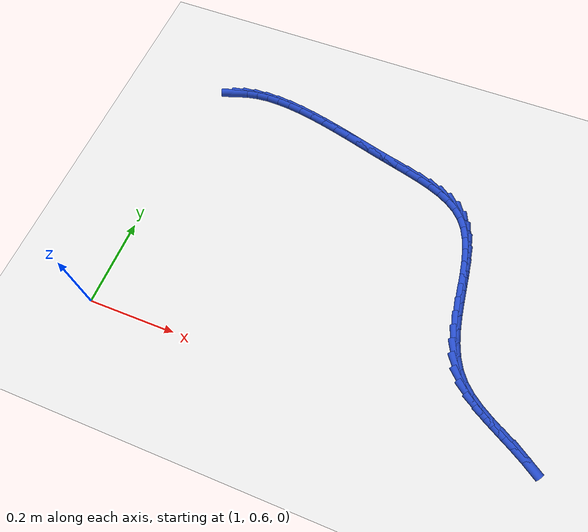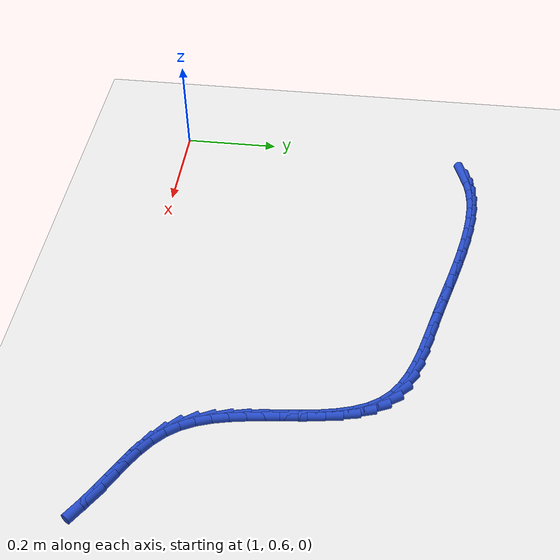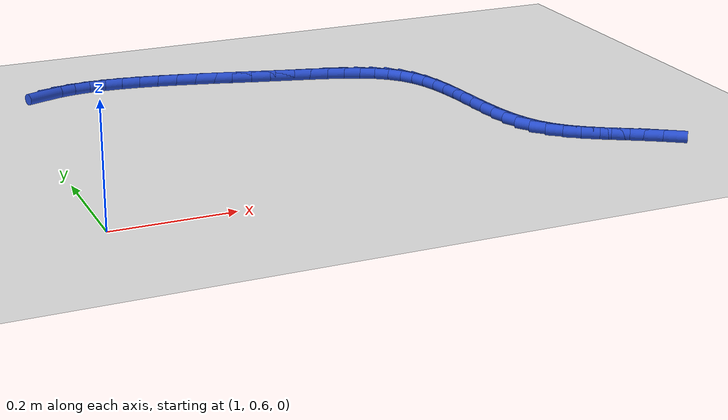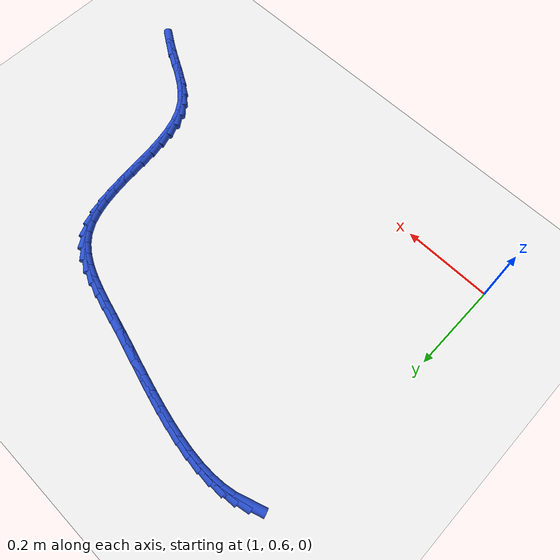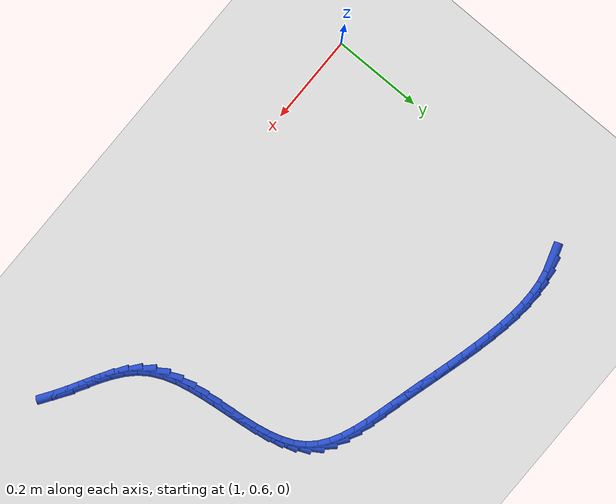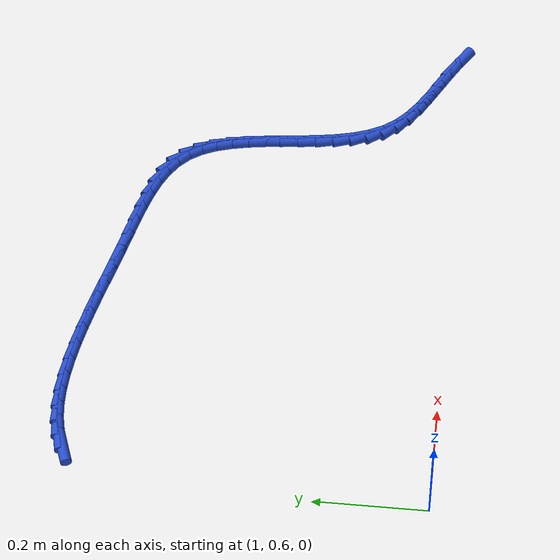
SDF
<sdf version="1.6">
 <world name="default">
  <model name="ground_plane">
   <static>1</static>
   <link name="link">
    <collision name="collision">
     <geometry><plane><normal>0 0 1</normal><size>100 100</size></plane></geometry>
     <surface><friction><ode><mu>100</mu><mu2>50</mu2></ode></friction></surface>
    </collision>
    <visual name="visual">
     <cast_shadows>0</cast_shadows>
     <geometry><plane><normal>0 0 1</normal><size>100 100</size></plane></geometry>
     <material>
      <script><uri>file://media/materials/scripts/gazebo.material</uri><name>Gazebo/WhiteGlow</name></script>
     </material>
    </visual>
   </link>
  </model>
  <model name="line">
   <link name="link_60">
    <pose>1.0682980972082632 1.2331336437885976 0.01 0 1.57 0.3257602040646511</pose>
    <collision name="collision">
     <geometry><cylinder><radius>0.01</radius><length>0.08</length></cylinder></geometry>
    </collision>
    <visual name="visual">
     <material>
      <script><name>Gazebo/Blue</name><uri>file://media/materials/scripts/gazebo.material</uri></script>
     </material>
     <geometry><cylinder><radius>0.01</radius><length>0.08</length></cylinder></geometry>
    </visual>
   </link>
   <link name="link_61">
    <pose>1.0928670368824889 1.241432896139681 0.01 0 1.57 0.19245607330047745</pose>
    <collision name="collision">
     <geometry><cylinder><radius>0.01</radius><length>0.08</length></cylinder></geometry>
    </collision>
    <visual name="visual">
     <material>
      <script><name>Gazebo/Blue</name><uri>file://media/materials/scripts/gazebo.material</uri></script>
     </material>
     <geometry><cylinder><radius>0.01</radius><length>0.08</length></cylinder></geometry>
    </visual>
   </link>
   <link name="link_62">
    <pose>1.119315324756412 1.2465868201007393 0.01 0 1.57 0.0819812979620027</pose>
    <collision name="collision">
     <geometry><cylinder><radius>0.01</radius><length>0.08</length></cylinder></geometry>
    </collision>
    <visual name="visual">
     <material>
      <script><name>Gazebo/Blue</name><uri>file://media/materials/scripts/gazebo.material</uri></script>
     </material>
     <geometry><cylinder><radius>0.01</radius><length>0.08</length></cylinder></geometry>
    </visual>
   </link>
   <link name="link_63">
    <pose>1.1474472630183485 1.2488982936551765 0.01 0 1.57 -0.007700715751210329</pose>
    <collision name="collision">
     <geometry><cylinder><radius>0.01</radius><length>0.08</length></cylinder></geometry>
    </collision>
    <visual name="visual">
     <material>
      <script><name>Gazebo/Blue</name><uri>file://media/materials/scripts/gazebo.material</uri></script>
     </material>
     <geometry><cylinder><radius>0.01</radius><length>0.08</length></cylinder></geometry>
    </visual>
   </link>
   <link name="link_64">
    <pose>1.1770671538566142 1.2486701947863992 0.01 0 1.57 -0.07956709545704521</pose>
    <collision name="collision">
     <geometry><cylinder><radius>0.01</radius><length>0.08</length></cylinder></geometry>
    </collision>
    <visual name="visual">
     <material>
      <script><name>Gazebo/Blue</name><uri>file://media/materials/scripts/gazebo.material</uri></script>
     </material>
     <geometry><cylinder><radius>0.01</radius><length>0.08</length></cylinder></geometry>
    </visual>
   </link>
   <link name="link_65">
    <pose>1.2079792994595255 1.2462054014778121 0.01 0 1.57 -0.13656384455430579</pose>
    <collision name="collision">
     <geometry><cylinder><radius>0.01</radius><length>0.08</length></cylinder></geometry>
    </collision>
    <visual name="visual">
     <material>
      <script><name>Gazebo/Blue</name><uri>file://media/materials/scripts/gazebo.material</uri></script>
     </material>
     <geometry><cylinder><radius>0.01</radius><length>0.08</length></cylinder></geometry>
    </visual>
   </link>
   <link name="link_66">
    <pose>1.2399880020153982 1.2418067917128204 0.01 0 1.57 -0.18120595964699635</pose>
    <collision name="collision">
     <geometry><cylinder><radius>0.01</radius><length>0.08</length></cylinder></geometry>
    </collision>
    <visual name="visual">
     <material>
      <script><name>Gazebo/Blue</name><uri>file://media/materials/scripts/gazebo.material</uri></script>
     </material>
     <geometry><cylinder><radius>0.01</radius><length>0.08</length></cylinder></geometry>
    </visual>
   </link>
   <link name="link_67">
    <pose>1.272897563712548 1.2357772434748293 0.01 0 1.57 -0.215482275003066</pose>
    <collision name="collision">
     <geometry><cylinder><radius>0.01</radius><length>0.08</length></cylinder></geometry>
    </collision>
    <visual name="visual">
     <material>
      <script><name>Gazebo/Blue</name><uri>file://media/materials/scripts/gazebo.material</uri></script>
     </material>
     <geometry><cylinder><radius>0.01</radius><length>0.08</length></cylinder></geometry>
    </visual>
   </link>
   <link name="link_68">
    <pose>1.3065122867392907 1.2284196347472447 0.01 0 1.57 -0.24088548124423756</pose>
    <collision name="collision">
     <geometry><cylinder><radius>0.01</radius><length>0.08</length></cylinder></geometry>
    </collision>
    <visual name="visual">
     <material>
      <script><name>Gazebo/Blue</name><uri>file://media/materials/scripts/gazebo.material</uri></script>
     </material>
     <geometry><cylinder><radius>0.01</radius><length>0.08</length></cylinder></geometry>
    </visual>
   </link>
   <link name="link_69">
    <pose>1.3406364732839424 1.2200368435134714 0.01 0 1.57 -0.25847690739245877</pose>
    <collision name="collision">
     <geometry><cylinder><radius>0.01</radius><length>0.08</length></cylinder></geometry>
    </collision>
    <visual name="visual">
     <material>
      <script><name>Gazebo/Blue</name><uri>file://media/materials/scripts/gazebo.material</uri></script>
     </material>
     <geometry><cylinder><radius>0.01</radius><length>0.08</length></cylinder></geometry>
    </visual>
   </link>
   <link name="link_70">
    <pose>1.3750744255348197 1.2109317477569148 0.01 0 1.57 -0.26894769308820193</pose>
    <collision name="collision">
     <geometry><cylinder><radius>0.01</radius><length>0.08</length></cylinder></geometry>
    </collision>
    <visual name="visual">
     <material>
      <script><name>Gazebo/Blue</name><uri>file://media/materials/scripts/gazebo.material</uri></script>
     </material>
     <geometry><cylinder><radius>0.01</radius><length>0.08</length></cylinder></geometry>
    </visual>
   </link>
   <link name="link_71">
    <pose>1.4096304456802375 1.2014072254609802 0.01 0 1.57 -0.2726623033455674</pose>
    <collision name="collision">
     <geometry><cylinder><radius>0.01</radius><length>0.08</length></cylinder></geometry>
    </collision>
    <visual name="visual">
     <material>
      <script><name>Gazebo/Blue</name><uri>file://media/materials/scripts/gazebo.material</uri></script>
     </material>
     <geometry><cylinder><radius>0.01</radius><length>0.08</length></cylinder></geometry>
    </visual>
   </link>
   <link name="link_72">
    <pose>1.4441088359085128 1.1917661546090736 0.01 0 1.57 -0.26967986547503003</pose>
    <collision name="collision">
     <geometry><cylinder><radius>0.01</radius><length>0.08</length></cylinder></geometry>
    </collision>
    <visual name="visual">
     <material>
      <script><name>Gazebo/Blue</name><uri>file://media/materials/scripts/gazebo.material</uri></script>
     </material>
     <geometry><cylinder><radius>0.01</radius><length>0.08</length></cylinder></geometry>
    </visual>
   </link>
   <link name="link_73">
    <pose>1.4783138984079602 1.1823114131845993 0.01 0 1.57 -0.26067462918415657</pose>
    <collision name="collision">
     <geometry><cylinder><radius>0.01</radius><length>0.08</length></cylinder></geometry>
    </collision>
    <visual name="visual">
     <material>
      <script><name>Gazebo/Blue</name><uri>file://media/materials/scripts/gazebo.material</uri></script>
     </material>
     <geometry><cylinder><radius>0.01</radius><length>0.08</length></cylinder></geometry>
    </visual>
   </link>
   <link name="link_74">
    <pose>1.512040262264226 1.1733151065514773 0.01 0 1.57 -0.2594281349938894</pose>
    <collision name="collision">
     <geometry><cylinder><radius>0.01</radius><length>0.08</length></cylinder></geometry>
    </collision>
    <visual name="visual">
     <material>
      <script><name>Gazebo/Blue</name><uri>file://media/materials/scripts/gazebo.material</uri></script>
     </material>
     <geometry><cylinder><radius>0.01</radius><length>0.08</length></cylinder></geometry>
    </visual>
   </link>
   <link name="link_75">
    <pose>1.5449363382225323 1.1645841820468465 0.01 0 1.57 -0.2780151432640949</pose>
    <collision name="collision">
     <geometry><cylinder><radius>0.01</radius><length>0.08</length></cylinder></geometry>
    </collision>
    <visual name="visual">
     <material>
      <script><name>Gazebo/Blue</name><uri>file://media/materials/scripts/gazebo.material</uri></script>
     </material>
     <geometry><cylinder><radius>0.01</radius><length>0.08</length></cylinder></geometry>
    </visual>
   </link>
   <link name="link_76">
    <pose>1.5765372160493627 1.1555650839224394 0.01 0 1.57 -0.31946563337393913</pose>
    <collision name="collision">
     <geometry><cylinder><radius>0.01</radius><length>0.08</length></cylinder></geometry>
    </collision>
    <visual name="visual">
     <material>
      <script><name>Gazebo/Blue</name><uri>file://media/materials/scripts/gazebo.material</uri></script>
     </material>
     <geometry><cylinder><radius>0.01</radius><length>0.08</length></cylinder></geometry>
    </visual>
   </link>
   <link name="link_77">
    <pose>1.6063750261570189 1.1456948419656532 0.01 0 1.57 -0.3880280987081178</pose>
    <collision name="collision">
     <geometry><cylinder><radius>0.01</radius><length>0.08</length></cylinder></geometry>
    </collision>
    <visual name="visual">
     <material>
      <script><name>Gazebo/Blue</name><uri>file://media/materials/scripts/gazebo.material</uri></script>
     </material>
     <geometry><cylinder><radius>0.01</radius><length>0.08</length></cylinder></geometry>
    </visual>
   </link>
   <link name="link_78">
    <pose>1.6339818989578039 1.1344104859638846 0.01 0 1.57 -0.48924247455947545</pose>
    <collision name="collision">
     <geometry><cylinder><radius>0.01</radius><length>0.08</length></cylinder></geometry>
    </collision>
    <visual name="visual">
     <material>
      <script><name>Gazebo/Blue</name><uri>file://media/materials/scripts/gazebo.material</uri></script>
     </material>
     <geometry><cylinder><radius>0.01</radius><length>0.08</length></cylinder></geometry>
    </visual>
   </link>
   <link name="link_79">
    <pose>1.6588899648640187 1.1211490457045312 0.01 0 1.57 -0.6284826003138324</pose>
    <collision name="collision">
     <geometry><cylinder><radius>0.01</radius><length>0.08</length></cylinder></geometry>
    </collision>
    <visual name="visual">
     <material>
      <script><name>Gazebo/Blue</name><uri>file://media/materials/scripts/gazebo.material</uri></script>
     </material>
     <geometry><cylinder><radius>0.01</radius><length>0.08</length></cylinder></geometry>
    </visual>
   </link>
   <link name="link_80">
    <pose>1.6806313542879658 1.1053475509749897 0.01 0 1.57 -0.8069461461199458</pose>
    <collision name="collision">
     <geometry><cylinder><radius>0.01</radius><length>0.08</length></cylinder></geometry>
    </collision>
    <visual name="visual">
     <material>
      <script><name>Gazebo/Blue</name><uri>file://media/materials/scripts/gazebo.material</uri></script>
     </material>
     <geometry><cylinder><radius>0.01</radius><length>0.08</length></cylinder></geometry>
    </visual>
   </link>
   <link name="link_81">
    <pose>1.698738213850775 1.0864430477496767 0.01 0 1.57 -1.0044543709158333</pose>
    <collision name="collision">
     <geometry><cylinder><radius>0.01</radius><length>0.08</length></cylinder></geometry>
    </collision>
    <visual name="visual">
     <material>
      <script><name>Gazebo/Blue</name><uri>file://media/materials/scripts/gazebo.material</uri></script>
     </material>
     <geometry><cylinder><radius>0.01</radius><length>0.08</length></cylinder></geometry>
    </visual>
   </link>
   <link name="link_82">
    <pose>1.7129544807824657 1.0640840876634172 0.01 0 1.57 -1.1687164294492152</pose>
    <collision name="collision">
     <geometry><cylinder><radius>0.01</radius><length>0.08</length></cylinder></geometry>
    </collision>
    <visual name="visual">
     <material>
      <script><name>Gazebo/Blue</name><uri>file://media/materials/scripts/gazebo.material</uri></script>
     </material>
     <geometry><cylinder><radius>0.01</radius><length>0.08</length></cylinder></geometry>
    </visual>
   </link>
   <link name="link_83">
    <pose>1.723765960297825 1.0386600922077092 0.01 0 1.57 -1.2900923517861294</pose>
    <collision name="collision">
     <geometry><cylinder><radius>0.01</radius><length>0.08</length></cylinder></geometry>
    </collision>
    <visual name="visual">
     <material>
      <script><name>Gazebo/Blue</name><uri>file://media/materials/scripts/gazebo.material</uri></script>
     </material>
     <geometry><cylinder><radius>0.01</radius><length>0.08</length></cylinder></geometry>
    </visual>
   </link>
   <link name="link_84">
    <pose>1.731820802259592 1.010722609099377 0.01 0 1.57 -1.3744793045323496</pose>
    <collision name="collision">
     <geometry><cylinder><radius>0.01</radius><length>0.08</length></cylinder></geometry>
    </collision>
    <visual name="visual">
     <material>
      <script><name>Gazebo/Blue</name><uri>file://media/materials/scripts/gazebo.material</uri></script>
     </material>
     <geometry><cylinder><radius>0.01</radius><length>0.08</length></cylinder></geometry>
    </visual>
   </link>
   <link name="link_85">
    <pose>1.7377671565305066 0.9808231860552452 0.01 0 1.57 -1.4284865832481108</pose>
    <collision name="collision">
     <geometry><cylinder><radius>0.01</radius><length>0.08</length></cylinder></geometry>
    </collision>
    <visual name="visual">
     <material>
      <script><name>Gazebo/Blue</name><uri>file://media/materials/scripts/gazebo.material</uri></script>
     </material>
     <geometry><cylinder><radius>0.01</radius><length>0.08</length></cylinder></geometry>
    </visual>
   </link>
   <link name="link_86">
    <pose>1.7422531729733082 0.9495133707921389 0.01 0 1.57 -1.4570837887705788</pose>
    <collision name="collision">
     <geometry><cylinder><radius>0.01</radius><length>0.08</length></cylinder></geometry>
    </collision>
    <visual name="visual">
     <material>
      <script><name>Gazebo/Blue</name><uri>file://media/materials/scripts/gazebo.material</uri></script>
     </material>
     <geometry><cylinder><radius>0.01</radius><length>0.08</length></cylinder></geometry>
    </visual>
   </link>
   <link name="link_87">
    <pose>1.7459270014507355 0.9173447110268822 0.01 0 1.57 -1.4631406618192042</pose>
    <collision name="collision">
     <geometry><cylinder><radius>0.01</radius><length>0.08</length></cylinder></geometry>
    </collision>
    <visual name="visual">
     <material>
      <script><name>Gazebo/Blue</name><uri>file://media/materials/scripts/gazebo.material</uri></script>
     </material>
     <geometry><cylinder><radius>0.01</radius><length>0.08</length></cylinder></geometry>
    </visual>
   </link>
   <link name="link_88">
    <pose>1.749436791825529 0.8848687544763 0.01 0 1.57 -1.4475125220901743</pose>
    <collision name="collision">
     <geometry><cylinder><radius>0.01</radius><length>0.08</length></cylinder></geometry>
    </collision>
    <visual name="visual">
     <material>
      <script><name>Gazebo/Blue</name><uri>file://media/materials/scripts/gazebo.material</uri></script>
     </material>
     <geometry><cylinder><radius>0.01</radius><length>0.08</length></cylinder></geometry>
    </visual>
   </link>
   <link name="link_89">
    <pose>1.7534306939604287 0.8526370488572165 0.01 0 1.57 -1.4091519129235528</pose>
    <collision name="collision">
     <geometry><cylinder><radius>0.01</radius><length>0.08</length></cylinder></geometry>
    </collision>
    <visual name="visual">
     <material>
      <script><name>Gazebo/Blue</name><uri>file://media/materials/scripts/gazebo.material</uri></script>
     </material>
     <geometry><cylinder><radius>0.01</radius><length>0.08</length></cylinder></geometry>
    </visual>
   </link>
   <link name="link_90">
    <pose>1.758556857718173 0.8212011418864568 0.01 0 1.57 -1.3451633860763643</pose>
    <collision name="collision">
     <geometry><cylinder><radius>0.01</radius><length>0.08</length></cylinder></geometry>
    </collision>
    <visual name="visual">
     <material>
      <script><name>Gazebo/Blue</name><uri>file://media/materials/scripts/gazebo.material</uri></script>
     </material>
     <geometry><cylinder><radius>0.01</radius><length>0.08</length></cylinder></geometry>
    </visual>
   </link>
   <link name="link_91">
    <pose>1.7654634329615013 0.7911125812808452 0.01 0 1.57 -1.2510079491429396</pose>
    <collision name="collision">
     <geometry><cylinder><radius>0.01</radius><length>0.08</length></cylinder></geometry>
    </collision>
    <visual name="visual">
     <material>
      <script><name>Gazebo/Blue</name><uri>file://media/materials/scripts/gazebo.material</uri></script>
     </material>
     <geometry><cylinder><radius>0.01</radius><length>0.08</length></cylinder></geometry>
    </visual>
   </link>
   <link name="link_92">
    <pose>1.7747985695531545 0.7629229147572063 0.01 0 1.57 -1.1214774422083367</pose>
    <collision name="collision">
     <geometry><cylinder><radius>0.01</radius><length>0.08</length></cylinder></geometry>
    </collision>
    <visual name="visual">
     <material>
      <script><name>Gazebo/Blue</name><uri>file://media/materials/scripts/gazebo.material</uri></script>
     </material>
     <geometry><cylinder><radius>0.01</radius><length>0.08</length></cylinder></geometry>
    </visual>
   </link>
   <link name="link_93">
    <pose>1.7872104173558714 0.7371836900323647 0.01 0 1.57 -0.9543380117399982</pose>
    <collision name="collision">
     <geometry><cylinder><radius>0.01</radius><length>0.08</length></cylinder></geometry>
    </collision>
    <visual name="visual">
     <material>
      <script><name>Gazebo/Blue</name><uri>file://media/materials/scripts/gazebo.material</uri></script>
     </material>
     <geometry><cylinder><radius>0.01</radius><length>0.08</length></cylinder></geometry>
    </visual>
   </link>
   <link name="link_94">
    <pose>1.8033318210219158 0.7144318464525162 0.01 0 1.57 -0.7829921896282375</pose>
    <collision name="collision">
     <geometry><cylinder><radius>0.01</radius><length>0.08</length></cylinder></geometry>
    </collision>
    <visual name="visual">
     <material>
      <script><name>Gazebo/Blue</name><uri>file://media/materials/scripts/gazebo.material</uri></script>
     </material>
     <geometry><cylinder><radius>0.01</radius><length>0.08</length></cylinder></geometry>
    </visual>
   </link>
   <link name="link_95">
    <pose>1.8232119128341788 0.6946471871750811 0.01 0 1.57 -0.6532830070714334</pose>
    <collision name="collision">
     <geometry><cylinder><radius>0.01</radius><length>0.08</length></cylinder></geometry>
    </collision>
    <visual name="visual">
     <material>
      <script><name>Gazebo/Blue</name><uri>file://media/materials/scripts/gazebo.material</uri></script>
     </material>
     <geometry><cylinder><radius>0.01</radius><length>0.08</length></cylinder></geometry>
    </visual>
   </link>
   <link name="link_96">
    <pose>1.8461480226251796 0.6770919421589535 0.01 0 1.57 -0.5681158363593102</pose>
    <collision name="collision">
     <geometry><cylinder><radius>0.01</radius><length>0.08</length></cylinder></geometry>
    </collision>
    <visual name="visual">
     <material>
      <script><name>Gazebo/Blue</name><uri>file://media/materials/scripts/gazebo.material</uri></script>
     </material>
     <geometry><cylinder><radius>0.01</radius><length>0.08</length></cylinder></geometry>
    </visual>
   </link>
   <link name="link_97">
    <pose>1.8713878806510769 0.6609810000346815 0.01 0 1.57 -0.5231441787920708</pose>
    <collision name="collision">
     <geometry><cylinder><radius>0.01</radius><length>0.08</length></cylinder></geometry>
    </collision>
    <visual name="visual">
     <material>
      <script><name>Gazebo/Blue</name><uri>file://media/materials/scripts/gazebo.material</uri></script>
     </material>
     <geometry><cylinder><radius>0.01</radius><length>0.08</length></cylinder></geometry>
    </visual>
   </link>
   <link name="link_98">
    <pose>1.8981792171680274 0.6455292494328111 0.01 0 1.57 -0.5139846164944215</pose>
    <collision name="collision">
     <geometry><cylinder><radius>0.01</radius><length>0.08</length></cylinder></geometry>
    </collision>
    <visual name="visual">
     <material>
      <script><name>Gazebo/Blue</name><uri>file://media/materials/scripts/gazebo.material</uri></script>
     </material>
     <geometry><cylinder><radius>0.01</radius><length>0.08</length></cylinder></geometry>
    </visual>
   </link>
   <link name="link_99">
    <pose>1.9257697624321903 0.6299515789838895 0.01 0 1.57 -0.537870119937666</pose>
    <collision name="collision">
     <geometry><cylinder><radius>0.01</radius><length>0.08</length></cylinder></geometry>
    </collision>
    <visual name="visual">
     <material>
      <script><name>Gazebo/Blue</name><uri>file://media/materials/scripts/gazebo.material</uri></script>
     </material>
     <geometry><cylinder><radius>0.01</radius><length>0.08</length></cylinder></geometry>
    </visual>
   </link>
   <link name="link_100">
    <pose>1.953407646445833 0.6134645273200905 0.01 0 1.57 -0.5860530966570627</pose>
    <collision name="collision">
     <geometry><cylinder><radius>0.01</radius><length>0.08</length></cylinder></geometry>
    </collision>
    <visual name="visual">
     <material>
      <script><name>Gazebo/Blue</name><uri>file://media/materials/scripts/gazebo.material</uri></script>
     </material>
     <geometry><cylinder><radius>0.01</radius><length>0.08</length></cylinder></geometry>
    </visual>
   </link>
  </model>
 </world>
</sdf>
